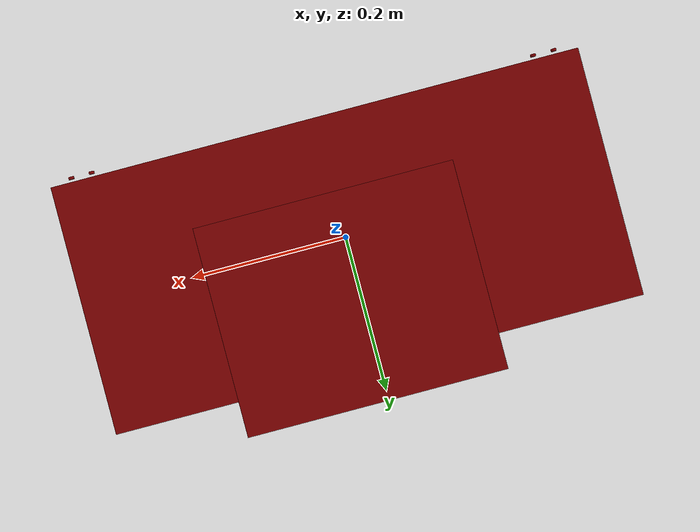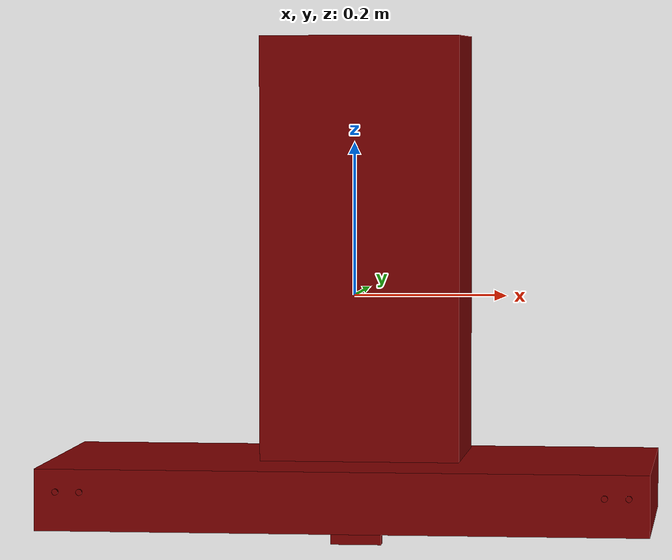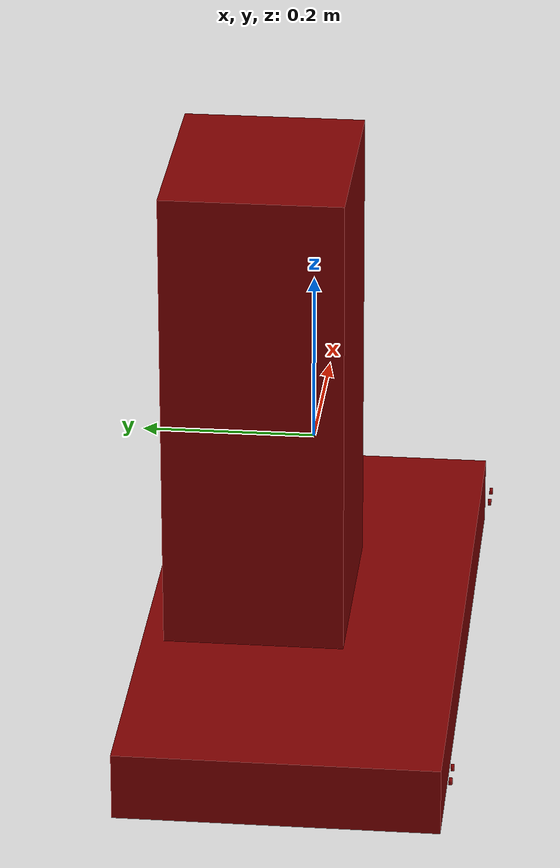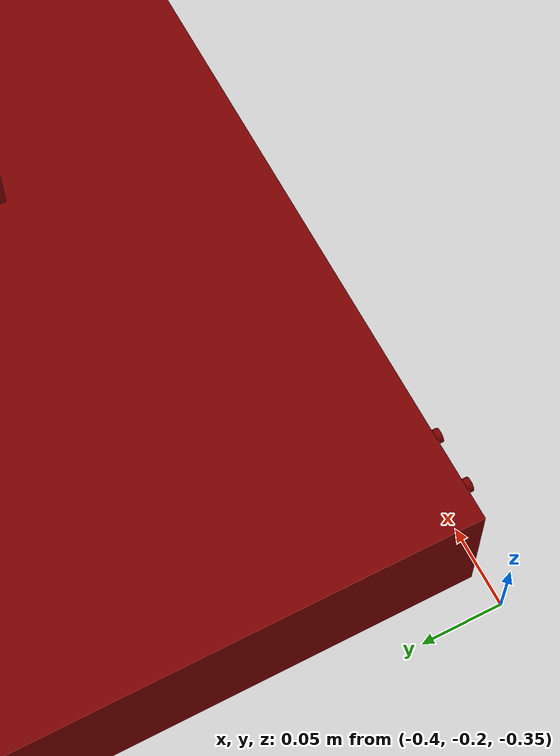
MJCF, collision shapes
<?xml version='1.0' encoding='UTF-8'?>
<mujoco model="model">
  <compiler angle="radian"/>
  <asset>
    <mesh file="visuals/Body001.obj" name="Body001_vis"/>
    <mesh file="visuals/Button001.obj" name="Button001_vis"/>
    <mesh file="visuals/Button002.obj" name="Button002_vis"/>
    <mesh file="visuals/Button003.obj" name="Button003_vis"/>
    <mesh file="visuals/Button004.obj" name="Button004_vis"/>
    <texture file="visuals/T_BC001.png" name="Body001_material" type="2d"/>
    <material name="Body001_material" rgba="1 1 1 1.0" texture="Body001_material" shininess="0.2512328028678894" specular="0.3103448502657381"/>
    <texture file="visuals/T_BC001.png" name="Button001_material" type="2d"/>
    <material name="Button001_material" rgba="1 1 1 1.0" texture="Button001_material" shininess="0.2512328028678894" specular="0.3103448502657381"/>
    <texture file="visuals/T_BC001.png" name="Button002_material" type="2d"/>
    <material name="Button002_material" rgba="1 1 1 1.0" texture="Button002_material" shininess="0.2512328028678894" specular="0.3103448502657381"/>
    <texture file="visuals/T_BC001.png" name="Button003_material" type="2d"/>
    <material name="Button003_material" rgba="1 1 1 1.0" texture="Button003_material" shininess="0.2512328028678894" specular="0.3103448502657381"/>
    <texture file="visuals/T_BC001.png" name="Button004_material" type="2d"/>
    <material name="Button004_material" rgba="1 1 1 1.0" texture="Button004_material" shininess="0.2512328028678894" specular="0.3103448502657381"/>
  </asset>
  <default>
    <default class="visual">
      <geom conaffinity="0" contype="0" group="1" type="mesh"/>
    </default>
    <default class="collision">
      <geom group="0" rgba="0.5 0 0 0.5"/>
    </default>
    <default class="spawn">
      <geom group="0" rgba="1 1 1 0.5" contype="0" conaffinity="0"/>
      <site group="0" rgba="1 1 1 0.5"/>
    </default>
    <default class="region">
      <geom group="1" conaffinity="0" contype="0" rgba="0 1 0 0"/>
    </default>
  </default>
  <worldbody>
    <body>
      <body name="object">
        <geom mesh="Body001_vis" type="mesh" solimp="0.998 0.998 0.001" solref="0.001 1" density="100" friction="0.95 0.3 0.1" class="visual" material="Body001_material"/>
        <geom class="collision" type="box" pos="0.010707 0.059659 0.050900" size="0.13066595792770386 0.10502713918685913 0.2890046238899231" quat="1.0 0.0 0.0 0.0"/>
        <geom class="collision" type="box" pos="-0.000354 0.005425 -0.255504" size="0.39389291405677795 0.18447096645832062 0.039826925843954086" quat="1.0 0.0 0.0 0.0"/>
        <geom class="collision" type="box" pos="-0.007270 0.089869 -0.317573" size="0.034084752202034 0.00977032445371151 0.022424589842557907" quat="1.0 0.0 0.0 0.0"/>
        <body name="Button001">
          <joint axis="0.0 1.0 0.0" pos="0.367309 -0.188015 -0.244865" limited="true" name="Button001_joint" range="0.0 0.0015" type="slide" damping="1" frictionloss="1" armature=".01" stiffness="0.05"/>
          <geom mesh="Button001_vis" type="mesh" solimp="0.998 0.998 0.001" solref="0.001 1" density="100" friction="0.95 0.3 0.1" class="visual" material="Button001_material"/>
          <geom class="collision" type="cylinder" pos="0.367284 -0.187996 -0.244850" size="0.004050406627357006 0.0018579839961603284" quat="0.7071067094802856 0.7071068286895752 0.0 0.0"/>
        </body>
        <body name="Button002">
          <joint axis="0.0 1.0 0.0" pos="0.336503 -0.187994 -0.244849" limited="true" name="Button002_joint" range="0.0 0.0015" type="slide" damping="1" frictionloss="1" armature=".01" stiffness="0.05"/>
          <geom mesh="Button002_vis" type="mesh" solimp="0.998 0.998 0.001" solref="0.001 1" density="100" friction="0.95 0.3 0.1" class="visual" material="Button002_material"/>
          <geom class="collision" type="cylinder" pos="0.336519 -0.187996 -0.244850" size="0.004050406627357006 0.0018579839961603284" quat="0.7071067094802856 0.7071068286895752 0.0 0.0"/>
        </body>
        <body name="Button003">
          <joint axis="0.0 1.0 0.0" pos="-0.334201 -0.187994 -0.244023" limited="true" name="Button003_joint" range="0.0 0.0015" type="slide" damping="1" frictionloss="1" armature=".01" stiffness="0.05"/>
          <geom mesh="Button003_vis" type="mesh" solimp="0.998 0.998 0.001" solref="0.001 1" density="100" friction="0.95 0.3 0.1" class="visual" material="Button003_material"/>
          <geom class="collision" type="cylinder" pos="-0.334117 -0.187996 -0.244057" size="0.004050406627357006 0.0018579839961603284" quat="0.7071067094802856 0.7071068286895752 0.0 0.0"/>
        </body>
        <body name="Button004">
          <joint axis="0.0 1.0 0.0" pos="-0.365123 -0.187995 -0.244040" limited="true" name="Button004_joint" range="0.0 0.0015" type="slide" damping="1" frictionloss="1" armature=".01" stiffness="0.05"/>
          <geom mesh="Button004_vis" type="mesh" solimp="0.998 0.998 0.001" solref="0.001 1" density="100" friction="0.95 0.3 0.1" class="visual" material="Button004_material"/>
          <geom class="collision" type="cylinder" pos="-0.365152 -0.187996 -0.244057" size="0.004050406627357006 0.0018579839961603284" quat="0.7071067094802856 0.7071068286895752 0.0 0.0"/>
        </body>
        <geom class="region" name="reg_main" type="box" pos="7.699999999999374e-05 -0.0007190000000000113 0.0" size="0.39417 0.18917699999999998 0.34027"/>
      </body>
    </body>
  </worldbody>
  <actuator>
    <motor name="Button001_joint_actuator" joint="Button001_joint" gear="0.5"/>
    <motor name="Button002_joint_actuator" joint="Button002_joint" gear="0.5"/>
    <motor name="Button003_joint_actuator" joint="Button003_joint" gear="0.5"/>
    <motor name="Button004_joint_actuator" joint="Button004_joint" gear="0.5"/>
  </actuator>
</mujoco>
